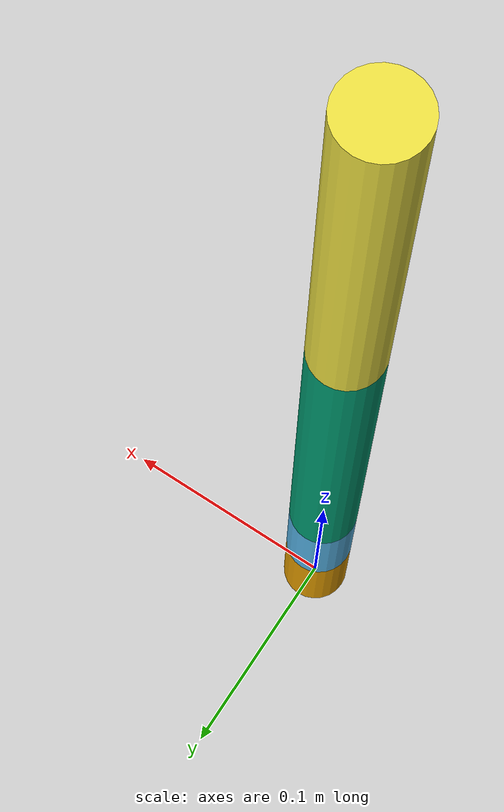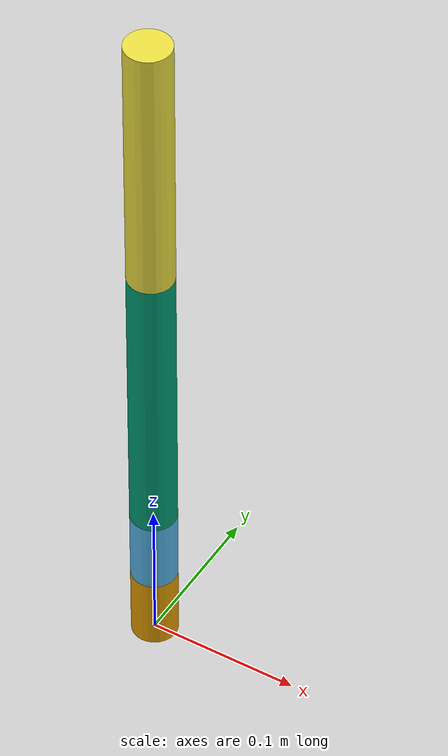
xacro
<?xml version="1.0"?>
<!-- 6.10절 실습: 허리(z) + 어깨(y) + 팔꿈치(y) 3관절 팔. 링크 길이는 명령줄에서 바꿀 수 있다 -->
<robot name="arm3" xmlns:xacro="http://www.ros.org/wiki/xacro">
  <xacro:arg name="upper" default="0.20"/>                <!-- 위팔 길이(m) -->
  <xacro:arg name="fore" default="0.18"/>                 <!-- 아래팔 길이(m) -->
  <xacro:property name="radius" value="0.015"/>

  <xacro:macro name="rod_link" params="name length mass">
    <link name="${name}">
      <visual>
        <origin xyz="0 0 ${length / 2}"/>
        <geometry><cylinder radius="${radius}" length="${length}"/></geometry>
      </visual>
      <collision>
        <origin xyz="0 0 ${length / 2}"/>
        <geometry><cylinder radius="${radius}" length="${length}"/></geometry>
      </collision>
      <inertial>
        <origin xyz="0 0 ${length / 2}"/>
        <mass value="${mass}"/>
        <inertia ixx="${mass * (3 * radius**2 + length**2) / 12}" ixy="0" ixz="0"
                 iyy="${mass * (3 * radius**2 + length**2) / 12}" iyz="0" izz="${mass * radius**2 / 2}"/>
      </inertial>
    </link>
  </xacro:macro>

  <xacro:macro name="hinge" params="name parent child z axis lower upper">
    <joint name="${name}" type="revolute">
      <parent link="${parent}"/>
      <child link="${child}"/>
      <origin xyz="0 0 ${z}"/>
      <axis xyz="${axis}"/>
      <limit lower="${lower}" upper="${upper}" effort="3" velocity="3"/>
    </joint>
  </xacro:macro>

  <xacro:rod_link name="base_link" length="0.05" mass="0.3"/>
  <xacro:hinge name="pan" parent="base_link" child="shoulder_link" z="0.05" axis="0 0 1"
               lower="${-pi}" upper="${pi}"/>
  <xacro:rod_link name="shoulder_link" length="0.05" mass="0.1"/>
  <xacro:hinge name="lift" parent="shoulder_link" child="upper_arm" z="0.05" axis="0 1 0"
               lower="${-pi / 2}" upper="${pi / 2}"/>
  <xacro:rod_link name="upper_arm" length="$(arg upper)" mass="0.15"/>
  <xacro:hinge name="elbow" parent="upper_arm" child="forearm" z="$(arg upper)" axis="0 1 0"
               lower="${-2.6}" upper="${2.6}"/>
  <xacro:rod_link name="forearm" length="$(arg fore)" mass="0.1"/>

  <joint name="tip_joint" type="fixed">
    <parent link="forearm"/>
    <child link="tip"/>
    <origin xyz="0 0 $(arg fore)"/>
  </joint>
  <link name="tip"/>
</robot>
